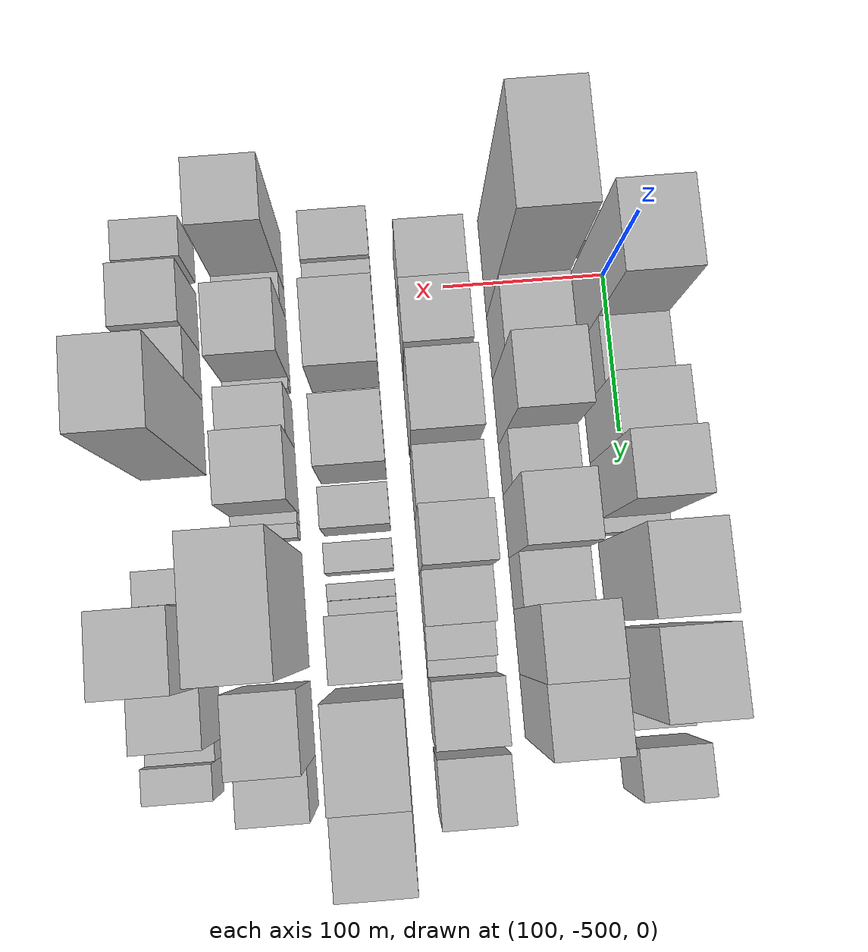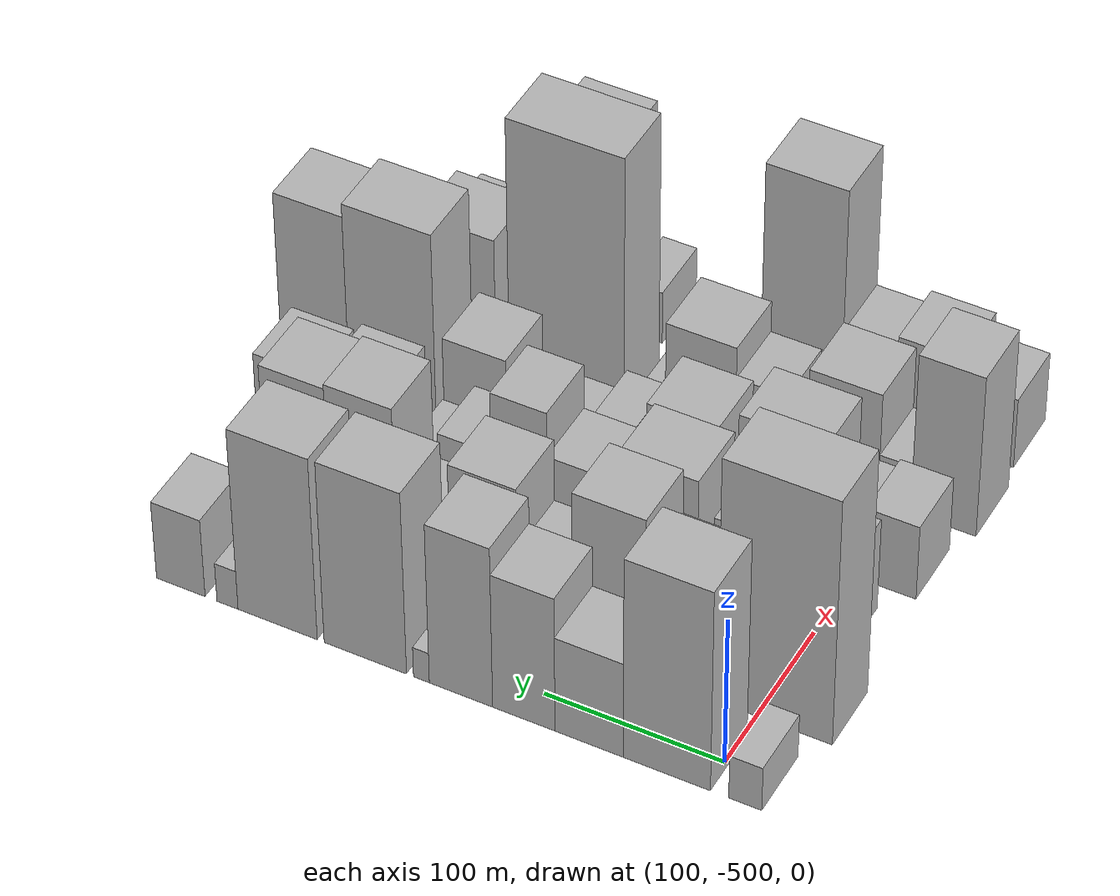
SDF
<sdf version="1.6">
 <world name="default">
  <model name="building_13">
   <static>1</static>
   <pose>100.0000 -521.2551 0 0.000000 0.000000 0.000000</pose>
   <link name="link">
    <pose>0 0 15.00 0 0 0</pose>
    <collision name="collision"><geometry><box><size>40.0000 17.9893 30.0000</size></box></geometry></collision>
    <visual name="visual">
     <cast_shadows>0</cast_shadows>
     <geometry><box><size>40.0000 17.9893 30.0000</size></box></geometry>
     <material>
      <script>
       <uri>model://HANNAS_wall/materials/scripts</uri>
       <uri>model://HANNAS_wall/materials/textures</uri>
       <name>vrc/HANNAS_wall</name>
      </script>
     </material>
    </visual>
   </link>
  </model>
  <model name="building_14">
   <static>1</static>
   <pose>100.0000 -478.3073 0 0.000000 0.000000 0.000000</pose>
   <link name="link">
    <pose>0 0 69.00 0 0 0</pose>
    <collision name="collision"><geometry><box><size>40.0000 47.9061 138.0000</size></box></geometry></collision>
    <visual name="visual">
     <cast_shadows>0</cast_shadows>
     <geometry><box><size>40.0000 47.9061 138.0000</size></box></geometry>
     <material>
      <script>
       <uri>model://HANNAS_wall/materials/scripts</uri>
       <uri>model://HANNAS_wall/materials/textures</uri>
       <name>vrc/HANNAS_wall</name>
      </script>
     </material>
    </visual>
   </link>
  </model>
  <model name="building_15">
   <static>1</static>
   <pose>100.0000 -435.3478 0 0.000000 0.000000 0.000000</pose>
   <link name="link">
    <pose>0 0 33.00 0 0 0</pose>
    <collision name="collision"><geometry><box><size>40.0000 38.0129 66.0000</size></box></geometry></collision>
    <visual name="visual">
     <cast_shadows>0</cast_shadows>
     <geometry><box><size>40.0000 38.0129 66.0000</size></box></geometry>
     <material>
      <script>
       <uri>model://HANNAS_wall/materials/scripts</uri>
       <uri>model://HANNAS_wall/materials/textures</uri>
       <name>vrc/HANNAS_wall</name>
      </script>
     </material>
    </visual>
   </link>
  </model>
  <model name="building_16">
   <static>1</static>
   <pose>100.0000 -398.8219 0 0.000000 0.000000 0.000000</pose>
   <link name="link">
    <pose>0 0 46.50 0 0 0</pose>
    <collision name="collision"><geometry><box><size>40.0000 35.0389 93.0000</size></box></geometry></collision>
    <visual name="visual">
     <cast_shadows>0</cast_shadows>
     <geometry><box><size>40.0000 35.0389 93.0000</size></box></geometry>
     <material>
      <script>
       <uri>model://HANNAS_wall/materials/scripts</uri>
       <uri>model://HANNAS_wall/materials/textures</uri>
       <name>vrc/HANNAS_wall</name>
      </script>
     </material>
    </visual>
   </link>
  </model>
  <model name="building_17">
   <static>1</static>
   <pose>100.0000 -363.3621 0 0.000000 0.000000 0.000000</pose>
   <link name="link">
    <pose>0 0 55.50 0 0 0</pose>
    <collision name="collision"><geometry><box><size>40.0000 35.8806 111.0000</size></box></geometry></collision>
    <visual name="visual">
     <cast_shadows>0</cast_shadows>
     <geometry><box><size>40.0000 35.8806 111.0000</size></box></geometry>
     <material>
      <script>
       <uri>model://HANNAS_wall/materials/scripts</uri>
       <uri>model://HANNAS_wall/materials/textures</uri>
       <name>vrc/HANNAS_wall</name>
      </script>
     </material>
    </visual>
   </link>
  </model>
  <model name="building_18">
   <static>1</static>
   <pose>100.0000 -340.9097 0 0.000000 0.000000 0.000000</pose>
   <link name="link">
    <pose>0 0 10.50 0 0 0</pose>
    <collision name="collision"><geometry><box><size>40.0000 9.0240 21.0000</size></box></geometry></collision>
    <visual name="visual">
     <cast_shadows>0</cast_shadows>
     <geometry><box><size>40.0000 9.0240 21.0000</size></box></geometry>
     <material>
      <script>
       <uri>model://HANNAS_wall/materials/scripts</uri>
       <uri>model://HANNAS_wall/materials/textures</uri>
       <name>vrc/HANNAS_wall</name>
      </script>
     </material>
    </visual>
   </link>
  </model>
  <model name="building_19">
   <static>1</static>
   <pose>100.0000 -308.7457 0 0.000000 0.000000 0.000000</pose>
   <link name="link">
    <pose>0 0 63.00 0 0 0</pose>
    <collision name="collision"><geometry><box><size>40.0000 47.3039 126.0000</size></box></geometry></collision>
    <visual name="visual">
     <cast_shadows>0</cast_shadows>
     <geometry><box><size>40.0000 47.3039 126.0000</size></box></geometry>
     <material>
      <script>
       <uri>model://HANNAS_wall/materials/scripts</uri>
       <uri>model://HANNAS_wall/materials/textures</uri>
       <name>vrc/HANNAS_wall</name>
      </script>
     </material>
    </visual>
   </link>
  </model>
  <model name="building_20">
   <static>1</static>
   <pose>100.0000 -258.0588 0 0.000000 0.000000 0.000000</pose>
   <link name="link">
    <pose>0 0 63.00 0 0 0</pose>
    <collision name="collision"><geometry><box><size>40.0000 46.0698 126.0000</size></box></geometry></collision>
    <visual name="visual">
     <cast_shadows>0</cast_shadows>
     <geometry><box><size>40.0000 46.0698 126.0000</size></box></geometry>
     <material>
      <script>
       <uri>model://HANNAS_wall/materials/scripts</uri>
       <uri>model://HANNAS_wall/materials/textures</uri>
       <name>vrc/HANNAS_wall</name>
      </script>
     </material>
    </visual>
   </link>
  </model>
  <model name="building_21">
   <static>1</static>
   <pose>100.0000 -228.8627 0 0.000000 0.000000 0.000000</pose>
   <link name="link">
    <pose>0 0 13.50 0 0 0</pose>
    <collision name="collision"><geometry><box><size>40.0000 12.3224 27.0000</size></box></geometry></collision>
    <visual name="visual">
     <cast_shadows>0</cast_shadows>
     <geometry><box><size>40.0000 12.3224 27.0000</size></box></geometry>
     <material>
      <script>
       <uri>model://HANNAS_wall/materials/scripts</uri>
       <uri>model://HANNAS_wall/materials/textures</uri>
       <name>vrc/HANNAS_wall</name>
      </script>
     </material>
    </visual>
   </link>
  </model>
  <model name="building_22">
   <static>1</static>
   <pose>100.0000 -201.4027 0 0.000000 0.000000 0.000000</pose>
   <link name="link">
    <pose>0 0 27.00 0 0 0</pose>
    <collision name="collision"><geometry><box><size>40.0000 28.5976 54.0000</size></box></geometry></collision>
    <visual name="visual">
     <cast_shadows>0</cast_shadows>
     <geometry><box><size>40.0000 28.5976 54.0000</size></box></geometry>
     <material>
      <script>
       <uri>model://HANNAS_wall/materials/scripts</uri>
       <uri>model://HANNAS_wall/materials/textures</uri>
       <name>vrc/HANNAS_wall</name>
      </script>
     </material>
    </visual>
   </link>
  </model>
  <model name="building_64">
   <static>1</static>
   <pose>155.0000 -509.9571 0 0.000000 0.000000 0.000000</pose>
   <link name="link">
    <pose>0 0 84.00 0 0 0</pose>
    <collision name="collision"><geometry><box><size>40.0000 63.5192 168.0000</size></box></geometry></collision>
    <visual name="visual">
     <cast_shadows>0</cast_shadows>
     <geometry><box><size>40.0000 63.5192 168.0000</size></box></geometry>
     <material>
      <script>
       <uri>model://HANNAS_wall/materials/scripts</uri>
       <uri>model://HANNAS_wall/materials/textures</uri>
       <name>vrc/HANNAS_wall</name>
      </script>
     </material>
    </visual>
   </link>
  </model>
  <model name="building_65">
   <static>1</static>
   <pose>155.0000 -458.1483 0 0.000000 0.000000 0.000000</pose>
   <link name="link">
    <pose>0 0 39.00 0 0 0</pose>
    <collision name="collision"><geometry><box><size>40.0000 40.0985 78.0000</size></box></geometry></collision>
    <visual name="visual">
     <cast_shadows>0</cast_shadows>
     <geometry><box><size>40.0000 40.0985 78.0000</size></box></geometry>
     <material>
      <script>
       <uri>model://HANNAS_wall/materials/scripts</uri>
       <uri>model://HANNAS_wall/materials/textures</uri>
       <name>vrc/HANNAS_wall</name>
      </script>
     </material>
    </visual>
   </link>
  </model>
  <model name="building_66">
   <static>1</static>
   <pose>155.0000 -417.5650 0 0.000000 0.000000 0.000000</pose>
   <link name="link">
    <pose>0 0 54.00 0 0 0</pose>
    <collision name="collision"><geometry><box><size>40.0000 41.0680 108.0000</size></box></geometry></collision>
    <visual name="visual">
     <cast_shadows>0</cast_shadows>
     <geometry><box><size>40.0000 41.0680 108.0000</size></box></geometry>
     <material>
      <script>
       <uri>model://HANNAS_wall/materials/scripts</uri>
       <uri>model://HANNAS_wall/materials/textures</uri>
       <name>vrc/HANNAS_wall</name>
      </script>
     </material>
    </visual>
   </link>
  </model>
  <model name="building_67">
   <static>1</static>
   <pose>155.0000 -381.4643 0 0.000000 0.000000 0.000000</pose>
   <link name="link">
    <pose>0 0 27.00 0 0 0</pose>
    <collision name="collision"><geometry><box><size>40.0000 31.1333 54.0000</size></box></geometry></collision>
    <visual name="visual">
     <cast_shadows>0</cast_shadows>
     <geometry><box><size>40.0000 31.1333 54.0000</size></box></geometry>
     <material>
      <script>
       <uri>model://HANNAS_wall/materials/scripts</uri>
       <uri>model://HANNAS_wall/materials/textures</uri>
       <name>vrc/HANNAS_wall</name>
      </script>
     </material>
    </visual>
   </link>
  </model>
  <model name="building_68">
   <static>1</static>
   <pose>155.0000 -346.7210 0 0.000000 0.000000 0.000000</pose>
   <link name="link">
    <pose>0 0 48.00 0 0 0</pose>
    <collision name="collision"><geometry><box><size>40.0000 38.3533 96.0000</size></box></geometry></collision>
    <visual name="visual">
     <cast_shadows>0</cast_shadows>
     <geometry><box><size>40.0000 38.3533 96.0000</size></box></geometry>
     <material>
      <script>
       <uri>model://HANNAS_wall/materials/scripts</uri>
       <uri>model://HANNAS_wall/materials/textures</uri>
       <name>vrc/HANNAS_wall</name>
      </script>
     </material>
    </visual>
   </link>
  </model>
  <model name="building_69">
   <static>1</static>
   <pose>155.0000 -312.1057 0 0.000000 0.000000 0.000000</pose>
   <link name="link">
    <pose>0 0 27.00 0 0 0</pose>
    <collision name="collision"><geometry><box><size>40.0000 30.8774 54.0000</size></box></geometry></collision>
    <visual name="visual">
     <cast_shadows>0</cast_shadows>
     <geometry><box><size>40.0000 30.8774 54.0000</size></box></geometry>
     <material>
      <script>
       <uri>model://HANNAS_wall/materials/scripts</uri>
       <uri>model://HANNAS_wall/materials/textures</uri>
       <name>vrc/HANNAS_wall</name>
      </script>
     </material>
    </visual>
   </link>
  </model>
  <model name="building_70">
   <static>1</static>
   <pose>155.0000 -277.3150 0 0.000000 0.000000 0.000000</pose>
   <link name="link">
    <pose>0 0 60.00 0 0 0</pose>
    <collision name="collision"><geometry><box><size>40.0000 38.7040 120.0000</size></box></geometry></collision>
    <visual name="visual">
     <cast_shadows>0</cast_shadows>
     <geometry><box><size>40.0000 38.7040 120.0000</size></box></geometry>
     <material>
      <script>
       <uri>model://HANNAS_wall/materials/scripts</uri>
       <uri>model://HANNAS_wall/materials/textures</uri>
       <name>vrc/HANNAS_wall</name>
      </script>
     </material>
    </visual>
   </link>
  </model>
  <model name="building_71">
   <static>1</static>
   <pose>155.0000 -239.2753 0 0.000000 0.000000 0.000000</pose>
   <link name="link">
    <pose>0 0 58.50 0 0 0</pose>
    <collision name="collision"><geometry><box><size>40.0000 37.3753 117.0000</size></box></geometry></collision>
    <visual name="visual">
     <cast_shadows>0</cast_shadows>
     <geometry><box><size>40.0000 37.3753 117.0000</size></box></geometry>
     <material>
      <script>
       <uri>model://HANNAS_wall/materials/scripts</uri>
       <uri>model://HANNAS_wall/materials/textures</uri>
       <name>vrc/HANNAS_wall</name>
      </script>
     </material>
    </visual>
   </link>
  </model>
  <model name="building_113">
   <static>1</static>
   <pose>210.0000 -503.1320 0 0.000000 0.000000 0.000000</pose>
   <link name="link">
    <pose>0 0 31.50 0 0 0</pose>
    <collision name="collision"><geometry><box><size>40.0000 35.3669 63.0000</size></box></geometry></collision>
    <visual name="visual">
     <cast_shadows>0</cast_shadows>
     <geometry><box><size>40.0000 35.3669 63.0000</size></box></geometry>
     <material>
      <script>
       <uri>model://HANNAS_wall/materials/scripts</uri>
       <uri>model://HANNAS_wall/materials/textures</uri>
       <name>vrc/HANNAS_wall</name>
      </script>
     </material>
    </visual>
   </link>
  </model>
  <model name="building_114">
   <static>1</static>
   <pose>210.0000 -466.6781 0 0.000000 0.000000 0.000000</pose>
   <link name="link">
    <pose>0 0 33.00 0 0 0</pose>
    <collision name="collision"><geometry><box><size>40.0000 37.5409 66.0000</size></box></geometry></collision>
    <visual name="visual">
     <cast_shadows>0</cast_shadows>
     <geometry><box><size>40.0000 37.5409 66.0000</size></box></geometry>
     <material>
      <script>
       <uri>model://HANNAS_wall/materials/scripts</uri>
       <uri>model://HANNAS_wall/materials/textures</uri>
       <name>vrc/HANNAS_wall</name>
      </script>
     </material>
    </visual>
   </link>
  </model>
  <model name="building_115">
   <static>1</static>
   <pose>210.0000 -443.4358 0 0.000000 0.000000 0.000000</pose>
   <link name="link">
    <pose>0 0 9.00 0 0 0</pose>
    <collision name="collision"><geometry><box><size>40.0000 8.9438 18.0000</size></box></geometry></collision>
    <visual name="visual">
     <cast_shadows>0</cast_shadows>
     <geometry><box><size>40.0000 8.9438 18.0000</size></box></geometry>
     <material>
      <script>
       <uri>model://HANNAS_wall/materials/scripts</uri>
       <uri>model://HANNAS_wall/materials/textures</uri>
       <name>vrc/HANNAS_wall</name>
      </script>
     </material>
    </visual>
   </link>
  </model>
  <model name="building_116">
   <static>1</static>
   <pose>210.0000 -416.4797 0 0.000000 0.000000 0.000000</pose>
   <link name="link">
    <pose>0 0 43.50 0 0 0</pose>
    <collision name="collision"><geometry><box><size>40.0000 44.9684 87.0000</size></box></geometry></collision>
    <visual name="visual">
     <cast_shadows>0</cast_shadows>
     <geometry><box><size>40.0000 44.9684 87.0000</size></box></geometry>
     <material>
      <script>
       <uri>model://HANNAS_wall/materials/scripts</uri>
       <uri>model://HANNAS_wall/materials/textures</uri>
       <name>vrc/HANNAS_wall</name>
      </script>
     </material>
    </visual>
   </link>
  </model>
  <model name="building_117">
   <static>1</static>
   <pose>210.0000 -371.8417 0 0.000000 0.000000 0.000000</pose>
   <link name="link">
    <pose>0 0 33.00 0 0 0</pose>
    <collision name="collision"><geometry><box><size>40.0000 36.3078 66.0000</size></box></geometry></collision>
    <visual name="visual">
     <cast_shadows>0</cast_shadows>
     <geometry><box><size>40.0000 36.3078 66.0000</size></box></geometry>
     <material>
      <script>
       <uri>model://HANNAS_wall/materials/scripts</uri>
       <uri>model://HANNAS_wall/materials/textures</uri>
       <name>vrc/HANNAS_wall</name>
      </script>
     </material>
    </visual>
   </link>
  </model>
  <model name="building_118">
   <static>1</static>
   <pose>210.0000 -337.6138 0 0.000000 0.000000 0.000000</pose>
   <link name="link">
    <pose>0 0 48.00 0 0 0</pose>
    <collision name="collision"><geometry><box><size>40.0000 32.1480 96.0000</size></box></geometry></collision>
    <visual name="visual">
     <cast_shadows>0</cast_shadows>
     <geometry><box><size>40.0000 32.1480 96.0000</size></box></geometry>
     <material>
      <script>
       <uri>model://HANNAS_wall/materials/scripts</uri>
       <uri>model://HANNAS_wall/materials/textures</uri>
       <name>vrc/HANNAS_wall</name>
      </script>
     </material>
    </visual>
   </link>
  </model>
  <model name="building_119">
   <static>1</static>
   <pose>210.0000 -305.9781 0 0.000000 0.000000 0.000000</pose>
   <link name="link">
    <pose>0 0 27.00 0 0 0</pose>
    <collision name="collision"><geometry><box><size>40.0000 31.1232 54.0000</size></box></geometry></collision>
    <visual name="visual">
     <cast_shadows>0</cast_shadows>
     <geometry><box><size>40.0000 31.1232 54.0000</size></box></geometry>
     <material>
      <script>
       <uri>model://HANNAS_wall/materials/scripts</uri>
       <uri>model://HANNAS_wall/materials/textures</uri>
       <name>vrc/HANNAS_wall</name>
      </script>
     </material>
    </visual>
   </link>
  </model>
  <model name="building_120">
   <static>1</static>
   <pose>210.0000 -280.8136 0 0.000000 0.000000 0.000000</pose>
   <link name="link">
    <pose>0 0 18.00 0 0 0</pose>
    <collision name="collision"><geometry><box><size>40.0000 19.2058 36.0000</size></box></geometry></collision>
    <visual name="visual">
     <cast_shadows>0</cast_shadows>
     <geometry><box><size>40.0000 19.2058 36.0000</size></box></geometry>
     <material>
      <script>
       <uri>model://HANNAS_wall/materials/scripts</uri>
       <uri>model://HANNAS_wall/materials/textures</uri>
       <name>vrc/HANNAS_wall</name>
      </script>
     </material>
    </visual>
   </link>
  </model>
  <model name="building_121">
   <static>1</static>
   <pose>210.0000 -266.2237 0 0.000000 0.000000 0.000000</pose>
   <link name="link">
    <pose>0 0 10.50 0 0 0</pose>
    <collision name="collision"><geometry><box><size>40.0000 9.9741 21.0000</size></box></geometry></collision>
    <visual name="visual">
     <cast_shadows>0</cast_shadows>
     <geometry><box><size>40.0000 9.9741 21.0000</size></box></geometry>
     <material>
      <script>
       <uri>model://HANNAS_wall/materials/scripts</uri>
       <uri>model://HANNAS_wall/materials/textures</uri>
       <name>vrc/HANNAS_wall</name>
      </script>
     </material>
    </visual>
   </link>
  </model>
  <model name="building_122">
   <static>1</static>
   <pose>210.0000 -242.9032 0 0.000000 0.000000 0.000000</pose>
   <link name="link">
    <pose>0 0 34.50 0 0 0</pose>
    <collision name="collision"><geometry><box><size>40.0000 36.6669 69.0000</size></box></geometry></collision>
    <visual name="visual">
     <cast_shadows>0</cast_shadows>
     <geometry><box><size>40.0000 36.6669 69.0000</size></box></geometry>
     <material>
      <script>
       <uri>model://HANNAS_wall/materials/scripts</uri>
       <uri>model://HANNAS_wall/materials/textures</uri>
       <name>vrc/HANNAS_wall</name>
      </script>
     </material>
    </visual>
   </link>
  </model>
  <model name="building_123">
   <static>1</static>
   <pose>210.0000 -201.0195 0 0.000000 0.000000 0.000000</pose>
   <link name="link">
    <pose>0 0 31.50 0 0 0</pose>
    <collision name="collision"><geometry><box><size>40.0000 37.1005 63.0000</size></box></geometry></collision>
    <visual name="visual">
     <cast_shadows>0</cast_shadows>
     <geometry><box><size>40.0000 37.1005 63.0000</size></box></geometry>
     <material>
      <script>
       <uri>model://HANNAS_wall/materials/scripts</uri>
       <uri>model://HANNAS_wall/materials/textures</uri>
       <name>vrc/HANNAS_wall</name>
      </script>
     </material>
    </visual>
   </link>
  </model>
  <model name="building_166">
   <static>1</static>
   <pose>265.0000 -520.6123 0 0.000000 0.000000 0.000000</pose>
   <link name="link">
    <pose>0 0 25.50 0 0 0</pose>
    <collision name="collision"><geometry><box><size>40.0000 29.6501 51.0000</size></box></geometry></collision>
    <visual name="visual">
     <cast_shadows>0</cast_shadows>
     <geometry><box><size>40.0000 29.6501 51.0000</size></box></geometry>
     <material>
      <script>
       <uri>model://HANNAS_wall/materials/scripts</uri>
       <uri>model://HANNAS_wall/materials/textures</uri>
       <name>vrc/HANNAS_wall</name>
      </script>
     </material>
    </visual>
   </link>
  </model>
  <model name="building_167">
   <static>1</static>
   <pose>265.0000 -494.3901 0 0.000000 0.000000 0.000000</pose>
   <link name="link">
    <pose>0 0 22.50 0 0 0</pose>
    <collision name="collision"><geometry><box><size>40.0000 22.7942 45.0000</size></box></geometry></collision>
    <visual name="visual">
     <cast_shadows>0</cast_shadows>
     <geometry><box><size>40.0000 22.7942 45.0000</size></box></geometry>
     <material>
      <script>
       <uri>model://HANNAS_wall/materials/scripts</uri>
       <uri>model://HANNAS_wall/materials/textures</uri>
       <name>vrc/HANNAS_wall</name>
      </script>
     </material>
    </visual>
   </link>
  </model>
  <model name="building_168">
   <static>1</static>
   <pose>265.0000 -458.4212 0 0.000000 0.000000 0.000000</pose>
   <link name="link">
    <pose>0 0 42.00 0 0 0</pose>
    <collision name="collision"><geometry><box><size>40.0000 49.1436 84.0000</size></box></geometry></collision>
    <visual name="visual">
     <cast_shadows>0</cast_shadows>
     <geometry><box><size>40.0000 49.1436 84.0000</size></box></geometry>
     <material>
      <script>
       <uri>model://HANNAS_wall/materials/scripts</uri>
       <uri>model://HANNAS_wall/materials/textures</uri>
       <name>vrc/HANNAS_wall</name>
      </script>
     </material>
    </visual>
   </link>
  </model>
  <model name="building_169">
   <static>1</static>
   <pose>265.0000 -428.0779 0 0.000000 0.000000 0.000000</pose>
   <link name="link">
    <pose>0 0 12.00 0 0 0</pose>
    <collision name="collision"><geometry><box><size>40.0000 11.5430 24.0000</size></box></geometry></collision>
    <visual name="visual">
     <cast_shadows>0</cast_shadows>
     <geometry><box><size>40.0000 11.5430 24.0000</size></box></geometry>
     <material>
      <script>
       <uri>model://HANNAS_wall/materials/scripts</uri>
       <uri>model://HANNAS_wall/materials/textures</uri>
       <name>vrc/HANNAS_wall</name>
      </script>
     </material>
    </visual>
   </link>
  </model>
  <model name="building_170">
   <static>1</static>
   <pose>265.0000 -402.0557 0 0.000000 0.000000 0.000000</pose>
   <link name="link">
    <pose>0 0 34.50 0 0 0</pose>
    <collision name="collision"><geometry><box><size>40.0000 40.5013 69.0000</size></box></geometry></collision>
    <visual name="visual">
     <cast_shadows>0</cast_shadows>
     <geometry><box><size>40.0000 40.5013 69.0000</size></box></geometry>
     <material>
      <script>
       <uri>model://HANNAS_wall/materials/scripts</uri>
       <uri>model://HANNAS_wall/materials/textures</uri>
       <name>vrc/HANNAS_wall</name>
      </script>
     </material>
    </visual>
   </link>
  </model>
  <model name="building_171">
   <static>1</static>
   <pose>265.0000 -361.8185 0 0.000000 0.000000 0.000000</pose>
   <link name="link">
    <pose>0 0 22.50 0 0 0</pose>
    <collision name="collision"><geometry><box><size>40.0000 23.9730 45.0000</size></box></geometry></collision>
    <visual name="visual">
     <cast_shadows>0</cast_shadows>
     <geometry><box><size>40.0000 23.9730 45.0000</size></box></geometry>
     <material>
      <script>
       <uri>model://HANNAS_wall/materials/scripts</uri>
       <uri>model://HANNAS_wall/materials/textures</uri>
       <name>vrc/HANNAS_wall</name>
      </script>
     </material>
    </visual>
   </link>
  </model>
  <model name="building_172">
   <static>1</static>
   <pose>265.0000 -334.0863 0 0.000000 0.000000 0.000000</pose>
   <link name="link">
    <pose>0 0 15.00 0 0 0</pose>
    <collision name="collision"><geometry><box><size>40.0000 17.4915 30.0000</size></box></geometry></collision>
    <visual name="visual">
     <cast_shadows>0</cast_shadows>
     <geometry><box><size>40.0000 17.4915 30.0000</size></box></geometry>
     <material>
      <script>
       <uri>model://HANNAS_wall/materials/scripts</uri>
       <uri>model://HANNAS_wall/materials/textures</uri>
       <name>vrc/HANNAS_wall</name>
      </script>
     </material>
    </visual>
   </link>
  </model>
  <model name="building_173">
   <static>1</static>
   <pose>265.0000 -314.4627 0 0.000000 0.000000 0.000000</pose>
   <link name="link">
    <pose>0 0 12.00 0 0 0</pose>
    <collision name="collision"><geometry><box><size>40.0000 9.7557 24.0000</size></box></geometry></collision>
    <visual name="visual">
     <cast_shadows>0</cast_shadows>
     <geometry><box><size>40.0000 9.7557 24.0000</size></box></geometry>
     <material>
      <script>
       <uri>model://HANNAS_wall/materials/scripts</uri>
       <uri>model://HANNAS_wall/materials/textures</uri>
       <name>vrc/HANNAS_wall</name>
      </script>
     </material>
    </visual>
   </link>
  </model>
  <model name="building_174">
   <static>1</static>
   <pose>265.0000 -304.9108 0 0.000000 0.000000 0.000000</pose>
   <link name="link">
    <pose>0 0 10.50 0 0 0</pose>
    <collision name="collision"><geometry><box><size>40.0000 9.3481 21.0000</size></box></geometry></collision>
    <visual name="visual">
     <cast_shadows>0</cast_shadows>
     <geometry><box><size>40.0000 9.3481 21.0000</size></box></geometry>
     <material>
      <script>
       <uri>model://HANNAS_wall/materials/scripts</uri>
       <uri>model://HANNAS_wall/materials/textures</uri>
       <name>vrc/HANNAS_wall</name>
      </script>
     </material>
    </visual>
   </link>
  </model>
  <model name="building_175">
   <static>1</static>
   <pose>265.0000 -281.7078 0 0.000000 0.000000 0.000000</pose>
   <link name="link">
    <pose>0 0 31.50 0 0 0</pose>
    <collision name="collision"><geometry><box><size>40.0000 37.0578 63.0000</size></box></geometry></collision>
    <visual name="visual">
     <cast_shadows>0</cast_shadows>
     <geometry><box><size>40.0000 37.0578 63.0000</size></box></geometry>
     <material>
      <script>
       <uri>model://HANNAS_wall/materials/scripts</uri>
       <uri>model://HANNAS_wall/materials/textures</uri>
       <name>vrc/HANNAS_wall</name>
      </script>
     </material>
    </visual>
   </link>
  </model>
  <model name="building_176">
   <static>1</static>
   <pose>265.0000 -232.1723 0 0.000000 0.000000 0.000000</pose>
   <link name="link">
    <pose>0 0 66.00 0 0 0</pose>
    <collision name="collision"><geometry><box><size>40.0000 52.0132 132.0000</size></box></geometry></collision>
    <visual name="visual">
     <cast_shadows>0</cast_shadows>
     <geometry><box><size>40.0000 52.0132 132.0000</size></box></geometry>
     <material>
      <script>
       <uri>model://HANNAS_wall/materials/scripts</uri>
       <uri>model://HANNAS_wall/materials/textures</uri>
       <name>vrc/HANNAS_wall</name>
      </script>
     </material>
    </visual>
   </link>
  </model>
  <model name="building_177">
   <static>1</static>
   <pose>265.0000 -185.7038 0 0.000000 0.000000 0.000000</pose>
   <link name="link">
    <pose>0 0 61.50 0 0 0</pose>
    <collision name="collision"><geometry><box><size>40.0000 40.9237 123.0000</size></box></geometry></collision>
    <visual name="visual">
     <cast_shadows>0</cast_shadows>
     <geometry><box><size>40.0000 40.9237 123.0000</size></box></geometry>
     <material>
      <script>
       <uri>model://HANNAS_wall/materials/scripts</uri>
       <uri>model://HANNAS_wall/materials/textures</uri>
       <name>vrc/HANNAS_wall</name>
      </script>
     </material>
    </visual>
   </link>
  </model>
  <model name="building_216">
   <static>1</static>
   <pose>320.0000 -524.9639 0 0.000000 0.000000 0.000000</pose>
   <link name="link">
    <pose>0 0 55.50 0 0 0</pose>
    <collision name="collision"><geometry><box><size>40.0000 36.9824 111.0000</size></box></geometry></collision>
    <visual name="visual">
     <cast_shadows>0</cast_shadows>
     <geometry><box><size>40.0000 36.9824 111.0000</size></box></geometry>
     <material>
      <script>
       <uri>model://HANNAS_wall/materials/scripts</uri>
       <uri>model://HANNAS_wall/materials/textures</uri>
       <name>vrc/HANNAS_wall</name>
      </script>
     </material>
    </visual>
   </link>
  </model>
  <model name="building_217">
   <static>1</static>
   <pose>320.0000 -497.1641 0 0.000000 0.000000 0.000000</pose>
   <link name="link">
    <pose>0 0 16.50 0 0 0</pose>
    <collision name="collision"><geometry><box><size>40.0000 18.6172 33.0000</size></box></geometry></collision>
    <visual name="visual">
     <cast_shadows>0</cast_shadows>
     <geometry><box><size>40.0000 18.6172 33.0000</size></box></geometry>
     <material>
      <script>
       <uri>model://HANNAS_wall/materials/scripts</uri>
       <uri>model://HANNAS_wall/materials/textures</uri>
       <name>vrc/HANNAS_wall</name>
      </script>
     </material>
    </visual>
   </link>
  </model>
  <model name="building_218">
   <static>1</static>
   <pose>320.0000 -467.2439 0 0.000000 0.000000 0.000000</pose>
   <link name="link">
    <pose>0 0 37.50 0 0 0</pose>
    <collision name="collision"><geometry><box><size>40.0000 41.2232 75.0000</size></box></geometry></collision>
    <visual name="visual">
     <cast_shadows>0</cast_shadows>
     <geometry><box><size>40.0000 41.2232 75.0000</size></box></geometry>
     <material>
      <script>
       <uri>model://HANNAS_wall/materials/scripts</uri>
       <uri>model://HANNAS_wall/materials/textures</uri>
       <name>vrc/HANNAS_wall</name>
      </script>
     </material>
    </visual>
   </link>
  </model>
  <model name="building_219">
   <static>1</static>
   <pose>320.0000 -443.1892 0 0.000000 0.000000 0.000000</pose>
   <link name="link">
    <pose>0 0 7.50 0 0 0</pose>
    <collision name="collision"><geometry><box><size>40.0000 6.8862 15.0000</size></box></geometry></collision>
    <visual name="visual">
     <cast_shadows>0</cast_shadows>
     <geometry><box><size>40.0000 6.8862 15.0000</size></box></geometry>
     <material>
      <script>
       <uri>model://HANNAS_wall/materials/scripts</uri>
       <uri>model://HANNAS_wall/materials/textures</uri>
       <name>vrc/HANNAS_wall</name>
      </script>
     </material>
    </visual>
   </link>
  </model>
  <model name="building_220">
   <static>1</static>
   <pose>320.0000 -420.0707 0 0.000000 0.000000 0.000000</pose>
   <link name="link">
    <pose>0 0 25.50 0 0 0</pose>
    <collision name="collision"><geometry><box><size>40.0000 29.3509 51.0000</size></box></geometry></collision>
    <visual name="visual">
     <cast_shadows>0</cast_shadows>
     <geometry><box><size>40.0000 29.3509 51.0000</size></box></geometry>
     <material>
      <script>
       <uri>model://HANNAS_wall/materials/scripts</uri>
       <uri>model://HANNAS_wall/materials/textures</uri>
       <name>vrc/HANNAS_wall</name>
      </script>
     </material>
    </visual>
   </link>
  </model>
  <model name="building_221">
   <static>1</static>
   <pose>320.0000 -384.9803 0 0.000000 0.000000 0.000000</pose>
   <link name="link">
    <pose>0 0 36.00 0 0 0</pose>
    <collision name="collision"><geometry><box><size>40.0000 40.8298 72.0000</size></box></geometry></collision>
    <visual name="visual">
     <cast_shadows>0</cast_shadows>
     <geometry><box><size>40.0000 40.8298 72.0000</size></box></geometry>
     <material>
      <script>
       <uri>model://HANNAS_wall/materials/scripts</uri>
       <uri>model://HANNAS_wall/materials/textures</uri>
       <name>vrc/HANNAS_wall</name>
      </script>
     </material>
    </visual>
   </link>
  </model>
  <model name="building_222">
   <static>1</static>
   <pose>320.0000 -360.9556 0 0.000000 0.000000 0.000000</pose>
   <link name="link">
    <pose>0 0 7.50 0 0 0</pose>
    <collision name="collision"><geometry><box><size>40.0000 7.2195 15.0000</size></box></geometry></collision>
    <visual name="visual">
     <cast_shadows>0</cast_shadows>
     <geometry><box><size>40.0000 7.2195 15.0000</size></box></geometry>
     <material>
      <script>
       <uri>model://HANNAS_wall/materials/scripts</uri>
       <uri>model://HANNAS_wall/materials/textures</uri>
       <name>vrc/HANNAS_wall</name>
      </script>
     </material>
    </visual>
   </link>
  </model>
  <model name="building_223">
   <static>1</static>
   <pose>320.0000 -352.8975 0 0.000000 0.000000 0.000000</pose>
   <link name="link">
    <pose>0 0 9.00 0 0 0</pose>
    <collision name="collision"><geometry><box><size>40.0000 8.8968 18.0000</size></box></geometry></collision>
    <visual name="visual">
     <cast_shadows>0</cast_shadows>
     <geometry><box><size>40.0000 8.8968 18.0000</size></box></geometry>
     <material>
      <script>
       <uri>model://HANNAS_wall/materials/scripts</uri>
       <uri>model://HANNAS_wall/materials/textures</uri>
       <name>vrc/HANNAS_wall</name>
      </script>
     </material>
    </visual>
   </link>
  </model>
  <model name="building_224">
   <static>1</static>
   <pose>320.0000 -306.2033 0 0.000000 0.000000 0.000000</pose>
   <link name="link">
    <pose>0 0 87.00 0 0 0</pose>
    <collision name="collision"><geometry><box><size>40.0000 68.4915 174.0000</size></box></geometry></collision>
    <visual name="visual">
     <cast_shadows>0</cast_shadows>
     <geometry><box><size>40.0000 68.4915 174.0000</size></box></geometry>
     <material>
      <script>
       <uri>model://HANNAS_wall/materials/scripts</uri>
       <uri>model://HANNAS_wall/materials/textures</uri>
       <name>vrc/HANNAS_wall</name>
      </script>
     </material>
    </visual>
   </link>
  </model>
  <model name="building_225">
   <static>1</static>
   <pose>320.0000 -242.0491 0 0.000000 0.000000 0.000000</pose>
   <link name="link">
    <pose>0 0 43.50 0 0 0</pose>
    <collision name="collision"><geometry><box><size>40.0000 43.8169 87.0000</size></box></geometry></collision>
    <visual name="visual">
     <cast_shadows>0</cast_shadows>
     <geometry><box><size>40.0000 43.8169 87.0000</size></box></geometry>
     <material>
      <script>
       <uri>model://HANNAS_wall/materials/scripts</uri>
       <uri>model://HANNAS_wall/materials/textures</uri>
       <name>vrc/HANNAS_wall</name>
      </script>
     </material>
    </visual>
   </link>
  </model>
  <model name="building_226">
   <static>1</static>
   <pose>320.0000 -205.7776 0 0.000000 0.000000 0.000000</pose>
   <link name="link">
    <pose>0 0 28.50 0 0 0</pose>
    <collision name="collision"><geometry><box><size>40.0000 28.7263 57.0000</size></box></geometry></collision>
    <visual name="visual">
     <cast_shadows>0</cast_shadows>
     <geometry><box><size>40.0000 28.7263 57.0000</size></box></geometry>
     <material>
      <script>
       <uri>model://HANNAS_wall/materials/scripts</uri>
       <uri>model://HANNAS_wall/materials/textures</uri>
       <name>vrc/HANNAS_wall</name>
      </script>
     </material>
    </visual>
   </link>
  </model>
  <model name="building_270">
   <static>1</static>
   <pose>375.0000 -527.2828 0 0.000000 0.000000 0.000000</pose>
   <link name="link">
    <pose>0 0 24.00 0 0 0</pose>
    <collision name="collision"><geometry><box><size>40.0000 24.4188 48.0000</size></box></geometry></collision>
    <visual name="visual">
     <cast_shadows>0</cast_shadows>
     <geometry><box><size>40.0000 24.4188 48.0000</size></box></geometry>
     <material>
      <script>
       <uri>model://HANNAS_wall/materials/scripts</uri>
       <uri>model://HANNAS_wall/materials/textures</uri>
       <name>vrc/HANNAS_wall</name>
      </script>
     </material>
    </visual>
   </link>
  </model>
  <model name="building_271">
   <static>1</static>
   <pose>375.0000 -489.5998 0 0.000000 0.000000 0.000000</pose>
   <link name="link">
    <pose>0 0 31.50 0 0 0</pose>
    <collision name="collision"><geometry><box><size>40.0000 36.9472 63.0000</size></box></geometry></collision>
    <visual name="visual">
     <cast_shadows>0</cast_shadows>
     <geometry><box><size>40.0000 36.9472 63.0000</size></box></geometry>
     <material>
      <script>
       <uri>model://HANNAS_wall/materials/scripts</uri>
       <uri>model://HANNAS_wall/materials/textures</uri>
       <name>vrc/HANNAS_wall</name>
      </script>
     </material>
    </visual>
   </link>
  </model>
  <model name="building_272">
   <static>1</static>
   <pose>375.0000 -455.5598 0 0.000000 0.000000 0.000000</pose>
   <link name="link">
    <pose>0 0 27.00 0 0 0</pose>
    <collision name="collision"><geometry><box><size>40.0000 31.1327 54.0000</size></box></geometry></collision>
    <visual name="visual">
     <cast_shadows>0</cast_shadows>
     <geometry><box><size>40.0000 31.1327 54.0000</size></box></geometry>
     <material>
      <script>
       <uri>model://HANNAS_wall/materials/scripts</uri>
       <uri>model://HANNAS_wall/materials/textures</uri>
       <name>vrc/HANNAS_wall</name>
      </script>
     </material>
    </visual>
   </link>
  </model>
  <model name="building_273">
   <static>1</static>
   <pose>375.0000 -416.4196 0 0.000000 0.000000 0.000000</pose>
   <link name="link">
    <pose>0 0 75.00 0 0 0</pose>
    <collision name="collision"><geometry><box><size>40.0000 47.1478 150.0000</size></box></geometry></collision>
    <visual name="visual">
     <cast_shadows>0</cast_shadows>
     <geometry><box><size>40.0000 47.1478 150.0000</size></box></geometry>
     <material>
      <script>
       <uri>model://HANNAS_wall/materials/scripts</uri>
       <uri>model://HANNAS_wall/materials/textures</uri>
       <name>vrc/HANNAS_wall</name>
      </script>
     </material>
    </visual>
   </link>
  </model>
  <model name="building_274">
   <static>1</static>
   <pose>375.0000 -324.5335 0 0.000000 0.000000 0.000000</pose>
   <link name="link">
    <pose>0 0 18.00 0 0 0</pose>
    <collision name="collision"><geometry><box><size>40.0000 20.2081 36.0000</size></box></geometry></collision>
    <visual name="visual">
     <cast_shadows>0</cast_shadows>
     <geometry><box><size>40.0000 20.2081 36.0000</size></box></geometry>
     <material>
      <script>
       <uri>model://HANNAS_wall/materials/scripts</uri>
       <uri>model://HANNAS_wall/materials/textures</uri>
       <name>vrc/HANNAS_wall</name>
      </script>
     </material>
    </visual>
   </link>
  </model>
  <model name="building_275">
   <static>1</static>
   <pose>375.0000 -289.0050 0 0.000000 0.000000 0.000000</pose>
   <link name="link">
    <pose>0 0 64.50 0 0 0</pose>
    <collision name="collision"><geometry><box><size>40.0000 42.8490 129.0000</size></box></geometry></collision>
    <visual name="visual">
     <cast_shadows>0</cast_shadows>
     <geometry><box><size>40.0000 42.8490 129.0000</size></box></geometry>
     <material>
      <script>
       <uri>model://HANNAS_wall/materials/scripts</uri>
       <uri>model://HANNAS_wall/materials/textures</uri>
       <name>vrc/HANNAS_wall</name>
      </script>
     </material>
    </visual>
   </link>
  </model>
  <model name="building_276">
   <static>1</static>
   <pose>375.0000 -250.9622 0 0.000000 0.000000 0.000000</pose>
   <link name="link">
    <pose>0 0 30.00 0 0 0</pose>
    <collision name="collision"><geometry><box><size>40.0000 33.2367 60.0000</size></box></geometry></collision>
    <visual name="visual">
     <cast_shadows>0</cast_shadows>
     <geometry><box><size>40.0000 33.2367 60.0000</size></box></geometry>
     <material>
      <script>
       <uri>model://HANNAS_wall/materials/scripts</uri>
       <uri>model://HANNAS_wall/materials/textures</uri>
       <name>vrc/HANNAS_wall</name>
      </script>
     </material>
    </visual>
   </link>
  </model>
  <model name="building_277">
   <static>1</static>
   <pose>375.0000 -229.2018 0 0.000000 0.000000 0.000000</pose>
   <link name="link">
    <pose>0 0 12.00 0 0 0</pose>
    <collision name="collision"><geometry><box><size>40.0000 10.2840 24.0000</size></box></geometry></collision>
    <visual name="visual">
     <cast_shadows>0</cast_shadows>
     <geometry><box><size>40.0000 10.2840 24.0000</size></box></geometry>
     <material>
      <script>
       <uri>model://HANNAS_wall/materials/scripts</uri>
       <uri>model://HANNAS_wall/materials/textures</uri>
       <name>vrc/HANNAS_wall</name>
      </script>
     </material>
    </visual>
   </link>
  </model>
  <model name="building_278">
   <static>1</static>
   <pose>375.0000 -214.0078 0 0.000000 0.000000 0.000000</pose>
   <link name="link">
    <pose>0 0 18.00 0 0 0</pose>
    <collision name="collision"><geometry><box><size>40.0000 20.1041 36.0000</size></box></geometry></collision>
    <visual name="visual">
     <cast_shadows>0</cast_shadows>
     <geometry><box><size>40.0000 20.1041 36.0000</size></box></geometry>
     <material>
      <script>
       <uri>model://HANNAS_wall/materials/scripts</uri>
       <uri>model://HANNAS_wall/materials/textures</uri>
       <name>vrc/HANNAS_wall</name>
      </script>
     </material>
    </visual>
   </link>
  </model>
 </world>
</sdf>
